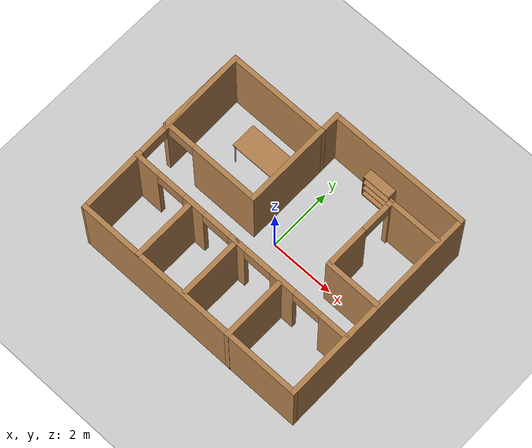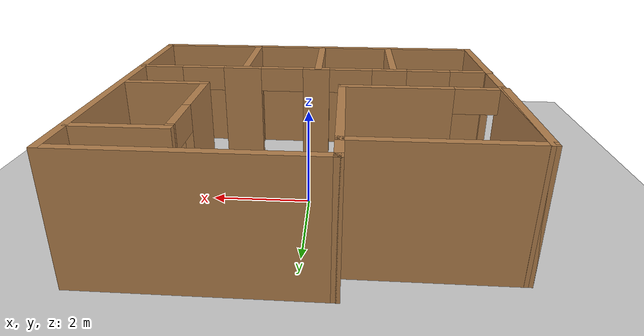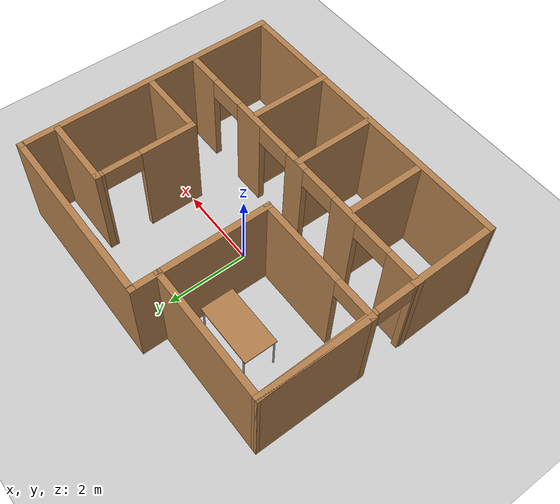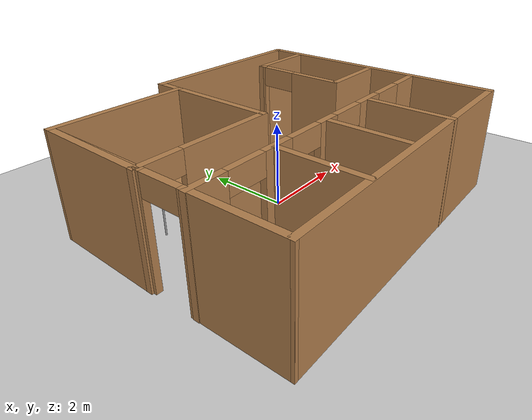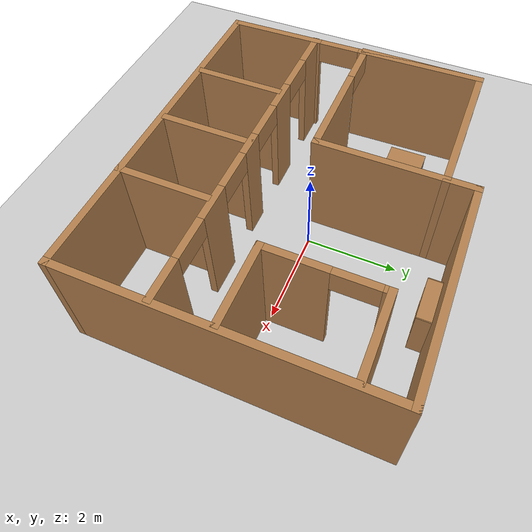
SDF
<sdf version="1.7">
 <world name="default">
  <light name="sun" type="directional">
   <pose>0 0 10 0 -0 0</pose>
   <diffuse>0.8 0.8 0.8 1</diffuse>
   <specular>0.2 0.2 0.2 1</specular>
   <attenuation>
    <range>1000</range>
    <constant>0.9</constant>
    <linear>0.01</linear>
    <quadratic>0.001</quadratic>
   </attenuation>
   <direction>-0.5 0.1 -0.9</direction>
   <spot><inner_angle>0</inner_angle><outer_angle>0</outer_angle><falloff>0</falloff></spot>
  </light>
  <model name="ground_plane">
   <static>1</static>
   <link name="link">
    <collision name="collision">
     <geometry><plane><normal>0 0 1</normal><size>100 100</size></plane></geometry>
     <surface><friction><ode><mu>100</mu><mu2>50</mu2></ode></friction></surface>
    </collision>
    <visual name="visual">
     <cast_shadows>0</cast_shadows>
     <geometry><plane><normal>0 0 1</normal><size>100 100</size></plane></geometry>
     <material>
      <script><uri>file://media/materials/scripts/gazebo.material</uri><name>Gazebo/Grey</name></script>
     </material>
    </visual>
   </link>
  </model>
  <gravity>0 0 -9.8</gravity>
  <magnetic_field>6e-06 2.3e-05 -4.2e-05</magnetic_field>
  <atmosphere type="adiabatic"/>
  <physics type="ode">
   <max_step_size>0.001</max_step_size>
   <real_time_factor>1</real_time_factor>
   <real_time_update_rate>1000</real_time_update_rate>
  </physics>
  <scene><ambient>0.4 0.4 0.4 1</ambient><background>0.7 0.7 0.7 1</background><shadows>1</shadows></scene>
  <audio><device>default</device></audio>
  <spherical_coordinates>
   <surface_model>EARTH_WGS84</surface_model>
   <latitude_deg>0</latitude_deg>
   <longitude_deg>0</longitude_deg>
   <elevation>0</elevation>
   <heading_deg>0</heading_deg>
  </spherical_coordinates>
  <model name="coustom_world">
   <pose>-0.000652 -0.124951 0 0 -0 0</pose>
   <link name="Wall_0">
    <collision name="Wall_0_Collision">
     <geometry><box><size>2.75 0.15 2.5</size></box></geometry>
     <pose>0 0 1.25 0 -0 0</pose>
    </collision>
    <visual name="Wall_0_Visual">
     <pose>0 0 1.25 0 -0 0</pose>
     <geometry><box><size>2.75 0.15 2.5</size></box></geometry>
     <material>
      <script><uri>file://media/materials/scripts/gazebo.material</uri><name>Gazebo/Wood</name></script>
      <ambient>1 1 1 1</ambient>
     </material>
     <meta><layer>0</layer></meta>
    </visual>
    <pose>-3.72435 1.27767 0 0 -0 1.5708</pose>
   </link>
   <link name="Wall_1">
    <collision name="Wall_1_Collision">
     <geometry><box><size>3.25 0.15 2.5</size></box></geometry>
     <pose>0 0 1.25 0 -0 0</pose>
    </collision>
    <visual name="Wall_1_Visual">
     <pose>0 0 1.25 0 -0 0</pose>
     <geometry><box><size>3.25 0.15 2.5</size></box></geometry>
     <material>
      <script><uri>file://media/materials/scripts/gazebo.material</uri><name>Gazebo/Wood</name></script>
      <ambient>1 1 1 1</ambient>
     </material>
     <meta><layer>0</layer></meta>
    </visual>
    <pose>-2.17435 2.57767 0 0 -0 0</pose>
   </link>
   <link name="Wall_13">
    <collision name="Wall_13_Collision">
     <geometry><box><size>1.75 0.15 2.5</size></box></geometry>
     <pose>0 0 1.25 0 -0 0</pose>
    </collision>
    <visual name="Wall_13_Visual">
     <pose>0 0 1.25 0 -0 0</pose>
     <geometry><box><size>1.75 0.15 2.5</size></box></geometry>
     <material>
      <script><uri>file://media/materials/scripts/gazebo.material</uri><name>Gazebo/Wood</name></script>
      <ambient>1 1 1 1</ambient>
     </material>
     <meta><layer>0</layer></meta>
    </visual>
    <pose>2.85802 2.32765 0 0 -0 3.14159</pose>
   </link>
   <link name="Wall_14">
    <pose>2.05802 1.15265 0 0 -0 -1.5708</pose>
    <visual name="Wall_14_Visual_0">
     <pose>-1.14152 0 1.25 0 -0 0</pose>
     <geometry><box><size>0.216953 0.15 2.5</size></box></geometry>
     <material>
      <script><uri>file://media/materials/scripts/gazebo.material</uri><name>Gazebo/Wood</name></script>
      <ambient>1 1 1 1</ambient>
     </material>
     <meta><layer>0</layer></meta>
    </visual>
    <collision name="Wall_14_Collision_0">
     <geometry><box><size>0.216953 0.15 2.5</size></box></geometry>
     <pose>-1.14152 0 1.25 0 -0 0</pose>
    </collision>
    <visual name="Wall_14_Visual_1">
     <pose>0.558476 0 1.25 0 -0 0</pose>
     <geometry><box><size>1.38305 0.15 2.5</size></box></geometry>
     <material>
      <script><uri>file://media/materials/scripts/gazebo.material</uri><name>Gazebo/Wood</name></script>
      <ambient>1 1 1 1</ambient>
     </material>
     <meta><layer>0</layer></meta>
    </visual>
    <collision name="Wall_14_Collision_1">
     <geometry><box><size>1.38305 0.15 2.5</size></box></geometry>
     <pose>0.558476 0 1.25 0 -0 0</pose>
    </collision>
    <visual name="Wall_14_Visual_2">
     <pose>-0.583047 0 2.25 0 -0 0</pose>
     <geometry><box><size>0.9 0.15 0.5</size></box></geometry>
     <material>
      <script><uri>file://media/materials/scripts/gazebo.material</uri><name>Gazebo/Wood</name></script>
      <ambient>1 1 1 1</ambient>
     </material>
     <meta><layer>0</layer></meta>
    </visual>
    <collision name="Wall_14_Collision_2">
     <geometry><box><size>0.9 0.15 0.5</size></box></geometry>
     <pose>-0.583047 0 2.25 0 -0 0</pose>
    </collision>
   </link>
   <link name="Wall_15">
    <collision name="Wall_15_Collision">
     <geometry><box><size>1.75 0.15 2.5</size></box></geometry>
     <pose>0 0 1.25 0 -0 0</pose>
    </collision>
    <visual name="Wall_15_Visual">
     <pose>0 0 1.25 0 -0 0</pose>
     <geometry><box><size>1.75 0.15 2.5</size></box></geometry>
     <material>
      <script><uri>file://media/materials/scripts/gazebo.material</uri><name>Gazebo/Wood</name></script>
      <ambient>1 1 1 1</ambient>
     </material>
     <meta><layer>0</layer></meta>
    </visual>
    <pose>2.85802 -0.022353 0 0 -0 0</pose>
   </link>
   <link name="Wall_18">
    <pose>0.004681 -1.20535 0 0 -0 0</pose>
    <visual name="Wall_18_Visual_0">
     <pose>-3.31428 0 1.25 0 -0 0</pose>
     <geometry><box><size>0.871443 0.15 2.5</size></box></geometry>
     <material>
      <script><uri>file://media/materials/scripts/gazebo.material</uri><name>Gazebo/Wood</name></script>
      <ambient>1 1 1 1</ambient>
     </material>
     <meta><layer>0</layer></meta>
    </visual>
    <collision name="Wall_18_Collision_0">
     <geometry><box><size>0.871443 0.15 2.5</size></box></geometry>
     <pose>-3.31428 0 1.25 0 -0 0</pose>
    </collision>
    <visual name="Wall_18_Visual_1">
     <pose>-1.61396 0 1.25 0 -0 0</pose>
     <geometry><box><size>0.729199 0.15 2.5</size></box></geometry>
     <material>
      <script><uri>file://media/materials/scripts/gazebo.material</uri><name>Gazebo/Wood</name></script>
      <ambient>1 1 1 1</ambient>
     </material>
     <meta><layer>0</layer></meta>
    </visual>
    <collision name="Wall_18_Collision_1">
     <geometry><box><size>0.729199 0.15 2.5</size></box></geometry>
     <pose>-1.61396 0 1.25 0 -0 0</pose>
    </collision>
    <visual name="Wall_18_Visual_2">
     <pose>-0.065212 0 1.25 0 -0 0</pose>
     <geometry><box><size>0.568291 0.15 2.5</size></box></geometry>
     <material>
      <script><uri>file://media/materials/scripts/gazebo.material</uri><name>Gazebo/Wood</name></script>
      <ambient>1 1 1 1</ambient>
     </material>
     <meta><layer>0</layer></meta>
    </visual>
    <collision name="Wall_18_Collision_2">
     <geometry><box><size>0.568291 0.15 2.5</size></box></geometry>
     <pose>-0.065212 0 1.25 0 -0 0</pose>
    </collision>
    <visual name="Wall_18_Visual_3">
     <pose>1.52376 0 1.25 0 -0 0</pose>
     <geometry><box><size>0.809654 0.15 2.5</size></box></geometry>
     <material>
      <script><uri>file://media/materials/scripts/gazebo.material</uri><name>Gazebo/Wood</name></script>
      <ambient>1 1 1 1</ambient>
     </material>
     <meta><layer>0</layer></meta>
    </visual>
    <collision name="Wall_18_Collision_3">
     <geometry><box><size>0.809654 0.15 2.5</size></box></geometry>
     <pose>1.52376 0 1.25 0 -0 0</pose>
    </collision>
    <visual name="Wall_18_Visual_4">
     <pose>3.28929 0 1.25 0 -0 0</pose>
     <geometry><box><size>0.921413 0.15 2.5</size></box></geometry>
     <material>
      <script><uri>file://media/materials/scripts/gazebo.material</uri><name>Gazebo/Wood</name></script>
      <ambient>1 1 1 1</ambient>
     </material>
     <meta><layer>0</layer></meta>
    </visual>
    <collision name="Wall_18_Collision_4">
     <geometry><box><size>0.921413 0.15 2.5</size></box></geometry>
     <pose>3.28929 0 1.25 0 -0 0</pose>
    </collision>
    <visual name="Wall_18_Visual_5">
     <pose>-2.42856 0 2.25 0 -0 0</pose>
     <geometry><box><size>0.9 0.15 0.5</size></box></geometry>
     <material>
      <script><uri>file://media/materials/scripts/gazebo.material</uri><name>Gazebo/Wood</name></script>
      <ambient>1 1 1 1</ambient>
     </material>
     <meta><layer>0</layer></meta>
    </visual>
    <collision name="Wall_18_Collision_5">
     <geometry><box><size>0.9 0.15 0.5</size></box></geometry>
     <pose>-2.42856 0 2.25 0 -0 0</pose>
    </collision>
    <visual name="Wall_18_Visual_6">
     <pose>-0.799357 0 2.25 0 -0 0</pose>
     <geometry><box><size>0.9 0.15 0.5</size></box></geometry>
     <material>
      <script><uri>file://media/materials/scripts/gazebo.material</uri><name>Gazebo/Wood</name></script>
      <ambient>1 1 1 1</ambient>
     </material>
     <meta><layer>0</layer></meta>
    </visual>
    <collision name="Wall_18_Collision_6">
     <geometry><box><size>0.9 0.15 0.5</size></box></geometry>
     <pose>-0.799357 0 2.25 0 -0 0</pose>
    </collision>
    <visual name="Wall_18_Visual_7">
     <pose>0.668933 0 2.25 0 -0 0</pose>
     <geometry><box><size>0.9 0.15 0.5</size></box></geometry>
     <material>
      <script><uri>file://media/materials/scripts/gazebo.material</uri><name>Gazebo/Wood</name></script>
      <ambient>1 1 1 1</ambient>
     </material>
     <meta><layer>0</layer></meta>
    </visual>
    <collision name="Wall_18_Collision_7">
     <geometry><box><size>0.9 0.15 0.5</size></box></geometry>
     <pose>0.668933 0 2.25 0 -0 0</pose>
    </collision>
    <visual name="Wall_18_Visual_8">
     <pose>2.37859 0 2.25 0 -0 0</pose>
     <geometry><box><size>0.9 0.15 0.5</size></box></geometry>
     <material>
      <script><uri>file://media/materials/scripts/gazebo.material</uri><name>Gazebo/Wood</name></script>
      <ambient>1 1 1 1</ambient>
     </material>
     <meta><layer>0</layer></meta>
    </visual>
    <collision name="Wall_18_Collision_8">
     <geometry><box><size>0.9 0.15 0.5</size></box></geometry>
     <pose>2.37859 0 2.25 0 -0 0</pose>
    </collision>
   </link>
   <link name="Wall_2">
    <collision name="Wall_2_Collision">
     <geometry><box><size>0.75 0.15 2.5</size></box></geometry>
     <pose>0 0 1.25 0 -0 0</pose>
    </collision>
    <visual name="Wall_2_Visual">
     <pose>0 0 1.25 0 -0 0</pose>
     <geometry><box><size>0.75 0.15 2.5</size></box></geometry>
     <material>
      <script><uri>file://media/materials/scripts/gazebo.material</uri><name>Gazebo/Wood</name></script>
      <ambient>1 1 1 1</ambient>
     </material>
     <meta><layer>0</layer></meta>
    </visual>
    <pose>-0.624354 2.87767 0 0 -0 1.5708</pose>
   </link>
   <link name="Wall_20">
    <collision name="Wall_20_Collision">
     <geometry><box><size>2 0.15 2.5</size></box></geometry>
     <pose>0 0 1.25 0 -0 0</pose>
    </collision>
    <visual name="Wall_20_Visual">
     <pose>0 0 1.25 0 -0 0</pose>
     <geometry><box><size>2 0.15 2.5</size></box></geometry>
     <material>
      <script><uri>file://media/materials/scripts/gazebo.material</uri><name>Gazebo/Wood</name></script>
      <ambient>1 1 1 1</ambient>
     </material>
     <meta><layer>0</layer></meta>
    </visual>
    <pose>1.47148 -2.25267 0 0 -0 1.5708</pose>
   </link>
   <link name="Wall_22">
    <collision name="Wall_22_Collision">
     <geometry><box><size>2 0.15 2.5</size></box></geometry>
     <pose>0 0 1.25 0 -0 0</pose>
    </collision>
    <visual name="Wall_22_Visual">
     <pose>0 0 1.25 0 -0 0</pose>
     <geometry><box><size>2 0.15 2.5</size></box></geometry>
     <material>
      <script><uri>file://media/materials/scripts/gazebo.material</uri><name>Gazebo/Wood</name></script>
      <ambient>1 1 1 1</ambient>
     </material>
     <meta><layer>0</layer></meta>
    </visual>
    <pose>-0.101404 -2.16014 0 0 -0 1.5708</pose>
   </link>
   <link name="Wall_24">
    <collision name="Wall_24_Collision">
     <geometry><box><size>2 0.15 2.5</size></box></geometry>
     <pose>0 0 1.25 0 -0 0</pose>
    </collision>
    <visual name="Wall_24_Visual">
     <pose>0 0 1.25 0 -0 0</pose>
     <geometry><box><size>2 0.15 2.5</size></box></geometry>
     <material>
      <script><uri>file://media/materials/scripts/gazebo.material</uri><name>Gazebo/Wood</name></script>
      <ambient>1 1 1 1</ambient>
     </material>
     <meta><layer>0</layer></meta>
    </visual>
    <pose>-1.69742 -2.22954 0 0 -0 1.5708</pose>
   </link>
   <link name="Wall_3">
    <collision name="Wall_3_Collision">
     <geometry><box><size>4.5 0.15 2.5</size></box></geometry>
     <pose>0 0 1.25 0 -0 0</pose>
    </collision>
    <visual name="Wall_3_Visual">
     <pose>0 0 1.25 0 -0 0</pose>
     <geometry><box><size>4.5 0.15 2.5</size></box></geometry>
     <material>
      <script><uri>file://media/materials/scripts/gazebo.material</uri><name>Gazebo/Wood</name></script>
      <ambient>1 1 1 1</ambient>
     </material>
     <meta><layer>0</layer></meta>
    </visual>
    <pose>1.55065 3.17767 0 0 -0 0</pose>
   </link>
   <link name="Wall_4">
    <collision name="Wall_4_Collision">
     <geometry><box><size>6.5 0.15 2.5</size></box></geometry>
     <pose>0 0 1.25 0 -0 0</pose>
    </collision>
    <visual name="Wall_4_Visual">
     <pose>0 0 1.25 0 -0 0</pose>
     <geometry><box><size>6.5 0.15 2.5</size></box></geometry>
     <material>
      <script><uri>file://media/materials/scripts/gazebo.material</uri><name>Gazebo/Wood</name></script>
      <ambient>1 1 1 1</ambient>
     </material>
     <meta><layer>0</layer></meta>
    </visual>
    <pose>3.72565 0.002666 0 0 -0 -1.5708</pose>
   </link>
   <link name="Wall_5">
    <collision name="Wall_5_Collision">
     <geometry><box><size>7.5 0.15 2.5</size></box></geometry>
     <pose>0 0 1.25 0 -0 0</pose>
    </collision>
    <visual name="Wall_5_Visual">
     <pose>0 0 1.25 0 -0 0</pose>
     <geometry><box><size>7.5 0.15 2.5</size></box></geometry>
     <material>
      <script><uri>file://media/materials/scripts/gazebo.material</uri><name>Gazebo/Wood</name></script>
      <ambient>1 1 1 1</ambient>
     </material>
     <meta><layer>0</layer></meta>
    </visual>
    <pose>0.050646 -3.17233 0 0 -0 3.14159</pose>
   </link>
   <link name="Wall_6">
    <pose>-3.67435 -0.297334 0 0 -0 1.58819</pose>
    <visual name="Wall_6_Visual_0">
     <pose>-1.86018 0 1.25 0 -0 0</pose>
     <geometry><box><size>2.18051 0.15 2.5</size></box></geometry>
     <material>
      <script><uri>file://media/materials/scripts/gazebo.material</uri><name>Gazebo/Wood</name></script>
      <ambient>1 1 1 1</ambient>
     </material>
     <meta><layer>0</layer></meta>
    </visual>
    <collision name="Wall_6_Collision_0">
     <geometry><box><size>2.18051 0.15 2.5</size></box></geometry>
     <pose>-1.86018 0 1.25 0 -0 0</pose>
    </collision>
    <visual name="Wall_6_Visual_1">
     <pose>1.54026 0 1.25 0 -0 0</pose>
     <geometry><box><size>2.82036 0.15 2.5</size></box></geometry>
     <material>
      <script><uri>file://media/materials/scripts/gazebo.material</uri><name>Gazebo/Wood</name></script>
      <ambient>1 1 1 1</ambient>
     </material>
     <meta><layer>0</layer></meta>
    </visual>
    <collision name="Wall_6_Collision_1">
     <geometry><box><size>2.82036 0.15 2.5</size></box></geometry>
     <pose>1.54026 0 1.25 0 -0 0</pose>
    </collision>
    <visual name="Wall_6_Visual_2">
     <pose>-0.319922 0 2.25 0 -0 0</pose>
     <geometry><box><size>0.9 0.15 0.5</size></box></geometry>
     <material>
      <script><uri>file://media/materials/scripts/gazebo.material</uri><name>Gazebo/Wood</name></script>
      <ambient>1 1 1 1</ambient>
     </material>
     <meta><layer>0</layer></meta>
    </visual>
    <collision name="Wall_6_Collision_2">
     <geometry><box><size>0.9 0.15 0.5</size></box></geometry>
     <pose>-0.319922 0 2.25 0 -0 0</pose>
    </collision>
   </link>
   <link name="Wall_8">
    <pose>-2.17435 -0.022334 0 0 -0 0</pose>
    <visual name="Wall_8_Visual_0">
     <pose>-1.55448 0 1.25 0 -0 0</pose>
     <geometry><box><size>0.141049 0.15 2.5</size></box></geometry>
     <material>
      <script><uri>file://media/materials/scripts/gazebo.material</uri><name>Gazebo/Wood</name></script>
      <ambient>1 1 1 1</ambient>
     </material>
     <meta><layer>0</layer></meta>
    </visual>
    <collision name="Wall_8_Collision_0">
     <geometry><box><size>0.141049 0.15 2.5</size></box></geometry>
     <pose>-1.55448 0 1.25 0 -0 0</pose>
    </collision>
    <visual name="Wall_8_Visual_1">
     <pose>0.520524 0 1.25 0 -0 0</pose>
     <geometry><box><size>2.20895 0.15 2.5</size></box></geometry>
     <material>
      <script><uri>file://media/materials/scripts/gazebo.material</uri><name>Gazebo/Wood</name></script>
      <ambient>1 1 1 1</ambient>
     </material>
     <meta><layer>0</layer></meta>
    </visual>
    <collision name="Wall_8_Collision_1">
     <geometry><box><size>2.20895 0.15 2.5</size></box></geometry>
     <pose>0.520524 0 1.25 0 -0 0</pose>
    </collision>
    <visual name="Wall_8_Visual_2">
     <pose>-1.03395 0 2.25 0 -0 0</pose>
     <geometry><box><size>0.9 0.15 0.5</size></box></geometry>
     <material>
      <script><uri>file://media/materials/scripts/gazebo.material</uri><name>Gazebo/Wood</name></script>
      <ambient>1 1 1 1</ambient>
     </material>
     <meta><layer>0</layer></meta>
    </visual>
    <collision name="Wall_8_Collision_2">
     <geometry><box><size>0.9 0.15 0.5</size></box></geometry>
     <pose>-1.03395 0 2.25 0 -0 0</pose>
    </collision>
   </link>
   <link name="Wall_9">
    <collision name="Wall_9_Collision">
     <geometry><box><size>2.75 0.15 2.5</size></box></geometry>
     <pose>0 0 1.25 0 -0 0</pose>
    </collision>
    <visual name="Wall_9_Visual">
     <pose>0 0 1.25 0 -0 0</pose>
     <geometry><box><size>2.75 0.15 2.5</size></box></geometry>
     <material>
      <script><uri>file://media/materials/scripts/gazebo.material</uri><name>Gazebo/Wood</name></script>
      <ambient>1 1 1 1</ambient>
     </material>
     <meta><layer>0</layer></meta>
    </visual>
    <pose>-0.624354 1.27767 0 0 -0 1.5708</pose>
   </link>
   <static>1</static>
  </model>
  <model name="table">
   <static>1</static>
   <link name="link">
    <collision name="surface">
     <pose>0 0 1 0 -0 0</pose>
     <geometry><box><size>1.5 0.8 0.03</size></box></geometry>
     <surface><friction><ode><mu>0.6</mu><mu2>0.6</mu2></ode></friction></surface>
    </collision>
    <visual name="visual1">
     <pose>0 0 1 0 -0 0</pose>
     <geometry><box><size>1.5 0.8 0.03</size></box></geometry>
     <material>
      <script><uri>file://media/materials/scripts/gazebo.material</uri><name>Gazebo/Wood</name></script>
     </material>
    </visual>
    <collision name="front_left_leg">
     <pose>0.68 0.38 0.5 0 -0 0</pose>
     <geometry><cylinder><radius>0.02</radius><length>1</length></cylinder></geometry>
    </collision>
    <visual name="front_left_leg">
     <pose>0.68 0.38 0.5 0 -0 0</pose>
     <geometry><cylinder><radius>0.02</radius><length>1</length></cylinder></geometry>
     <material>
      <script><uri>file://media/materials/scripts/gazebo.material</uri><name>Gazebo/Grey</name></script>
     </material>
    </visual>
    <collision name="front_right_leg">
     <pose>0.68 -0.38 0.5 0 -0 0</pose>
     <geometry><cylinder><radius>0.02</radius><length>1</length></cylinder></geometry>
    </collision>
    <visual name="front_right_leg">
     <pose>0.68 -0.38 0.5 0 -0 0</pose>
     <geometry><cylinder><radius>0.02</radius><length>1</length></cylinder></geometry>
     <material>
      <script><uri>file://media/materials/scripts/gazebo.material</uri><name>Gazebo/Grey</name></script>
     </material>
    </visual>
    <collision name="back_right_leg">
     <pose>-0.68 -0.38 0.5 0 -0 0</pose>
     <geometry><cylinder><radius>0.02</radius><length>1</length></cylinder></geometry>
    </collision>
    <visual name="back_right_leg">
     <pose>-0.68 -0.38 0.5 0 -0 0</pose>
     <geometry><cylinder><radius>0.02</radius><length>1</length></cylinder></geometry>
     <material>
      <script><uri>file://media/materials/scripts/gazebo.material</uri><name>Gazebo/Grey</name></script>
     </material>
    </visual>
    <collision name="back_left_leg">
     <pose>-0.68 0.38 0.5 0 -0 0</pose>
     <geometry><cylinder><radius>0.02</radius><length>1</length></cylinder></geometry>
    </collision>
    <visual name="back_left_leg">
     <pose>-0.68 0.38 0.5 0 -0 0</pose>
     <geometry><cylinder><radius>0.02</radius><length>1</length></cylinder></geometry>
     <material>
      <script><uri>file://media/materials/scripts/gazebo.material</uri><name>Gazebo/Grey</name></script>
     </material>
    </visual>
   </link>
   <pose>-1.76971 1.43721 0 0 -0 0</pose>
  </model>
  <model name="bookshelf">
   <static>1</static>
   <link name="link">
    <inertial><mass>1</mass></inertial>
    <collision name="back">
     <pose>0 0.005 0.6 0 -0 0</pose>
     <geometry><box><size>0.9 0.01 1.2</size></box></geometry>
    </collision>
    <visual name="visual1">
     <pose>0 0.005 0.6 0 -0 0</pose>
     <geometry><box><size>0.9 0.01 1.2</size></box></geometry>
     <material>
      <script><uri>file://media/materials/scripts/gazebo.material</uri><name>Gazebo/Wood</name></script>
     </material>
    </visual>
    <collision name="left_side">
     <pose>0.45 -0.195 0.6 0 -0 0</pose>
     <geometry><box><size>0.02 0.4 1.2</size></box></geometry>
    </collision>
    <visual name="visual2">
     <pose>0.45 -0.195 0.6 0 -0 0</pose>
     <geometry><box><size>0.02 0.4 1.2</size></box></geometry>
     <material>
      <script><uri>file://media/materials/scripts/gazebo.material</uri><name>Gazebo/Wood</name></script>
     </material>
    </visual>
    <collision name="right_side">
     <pose>-0.45 -0.195 0.6 0 -0 0</pose>
     <geometry><box><size>0.02 0.4 1.2</size></box></geometry>
    </collision>
    <visual name="visual3">
     <pose>-0.45 -0.195 0.6 0 -0 0</pose>
     <geometry><box><size>0.02 0.4 1.2</size></box></geometry>
     <material>
      <script><uri>file://media/materials/scripts/gazebo.material</uri><name>Gazebo/Wood</name></script>
     </material>
    </visual>
    <collision name="bottom">
     <pose>0 -0.195 0.03 0 -0 0</pose>
     <geometry><box><size>0.88 0.4 0.06</size></box></geometry>
    </collision>
    <visual name="visual4">
     <pose>0 -0.195 0.03 0 -0 0</pose>
     <geometry><box><size>0.88 0.4 0.06</size></box></geometry>
     <material>
      <script><uri>file://media/materials/scripts/gazebo.material</uri><name>Gazebo/Wood</name></script>
     </material>
    </visual>
    <collision name="top">
     <pose>0 -0.195 1.19 0 -0 0</pose>
     <geometry><box><size>0.88 0.4 0.02</size></box></geometry>
    </collision>
    <visual name="visual5">
     <pose>0 -0.195 1.19 0 -0 0</pose>
     <geometry><box><size>0.88 0.4 0.02</size></box></geometry>
     <material>
      <script><uri>file://media/materials/scripts/gazebo.material</uri><name>Gazebo/Wood</name></script>
     </material>
    </visual>
    <collision name="low_shelf">
     <pose>0 -0.195 0.43 0 -0 0</pose>
     <geometry><box><size>0.88 0.4 0.02</size></box></geometry>
    </collision>
    <visual name="visual6">
     <pose>0 -0.195 0.43 0 -0 0</pose>
     <geometry><box><size>0.88 0.4 0.02</size></box></geometry>
     <material>
      <script><uri>file://media/materials/scripts/gazebo.material</uri><name>Gazebo/Wood</name></script>
     </material>
    </visual>
    <collision name="high_shelf">
     <pose>0 -0.195 0.8 0 -0 0</pose>
     <geometry><box><size>0.88 0.4 0.02</size></box></geometry>
    </collision>
    <visual name="visual7">
     <pose>0 -0.195 0.8 0 -0 0</pose>
     <geometry><box><size>0.88 0.4 0.02</size></box></geometry>
     <material>
      <script><uri>file://media/materials/scripts/gazebo.material</uri><name>Gazebo/Wood</name></script>
     </material>
    </visual>
   </link>
   <pose>1.16552 3.07416 0 0 -0 0</pose>
  </model>
 </world>
</sdf>
